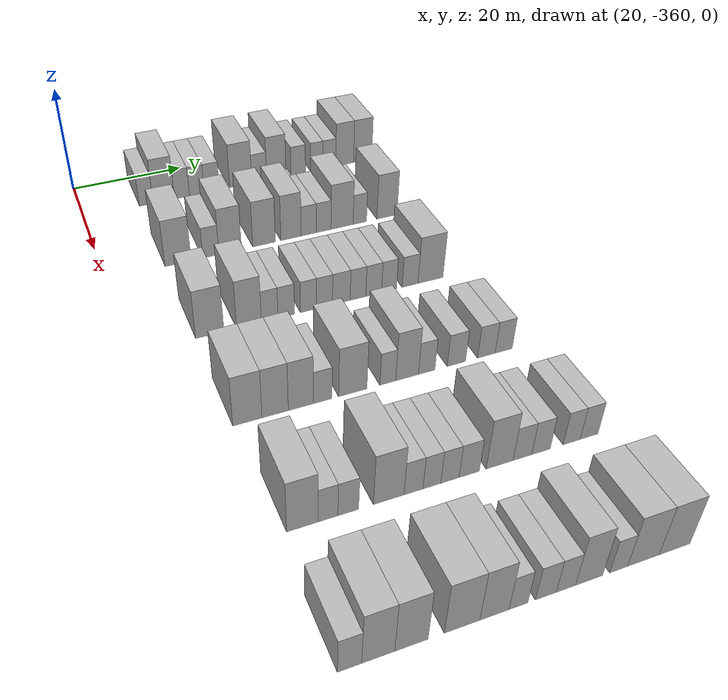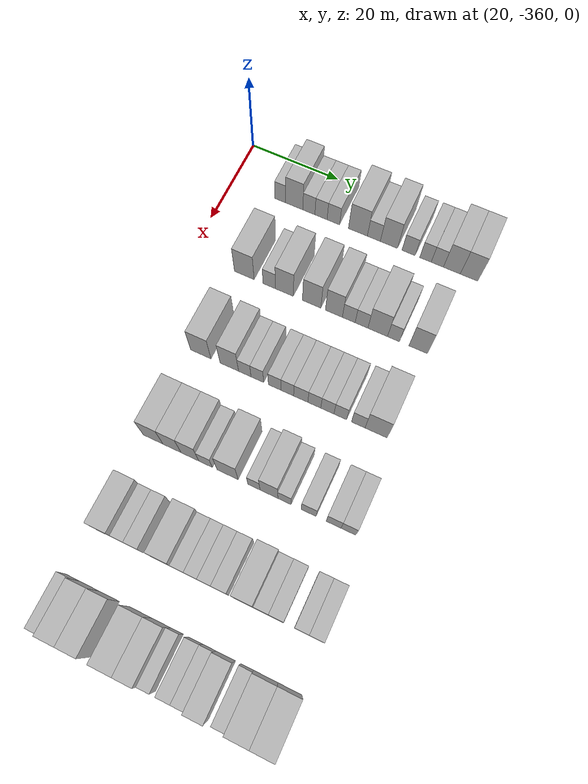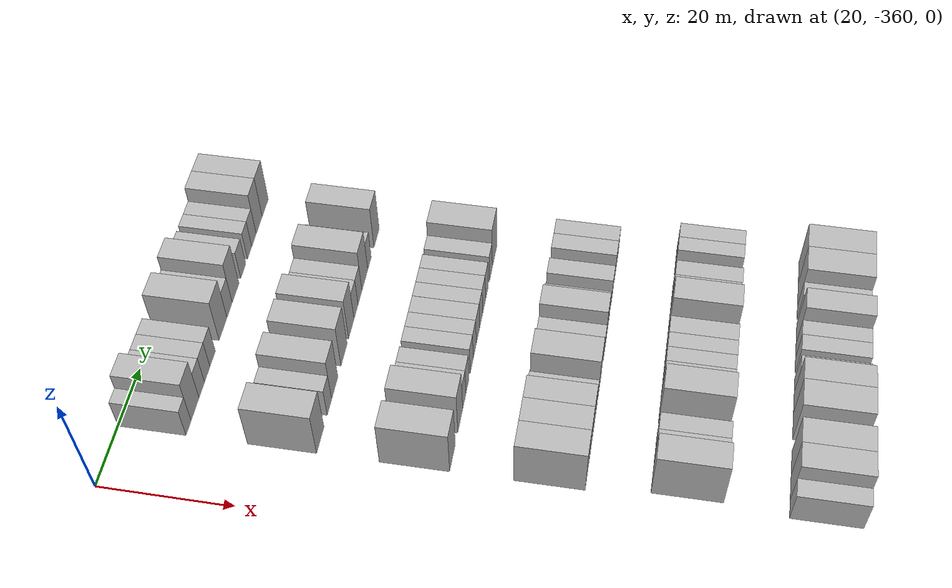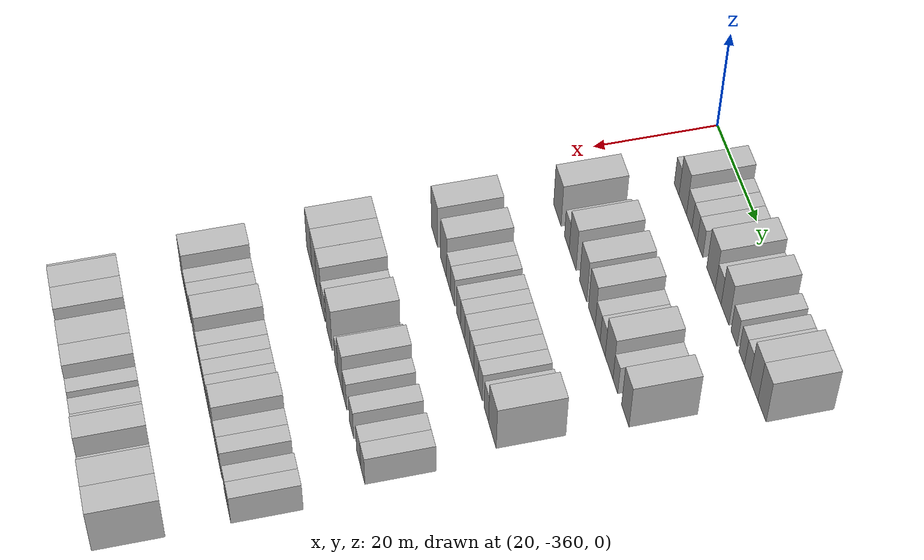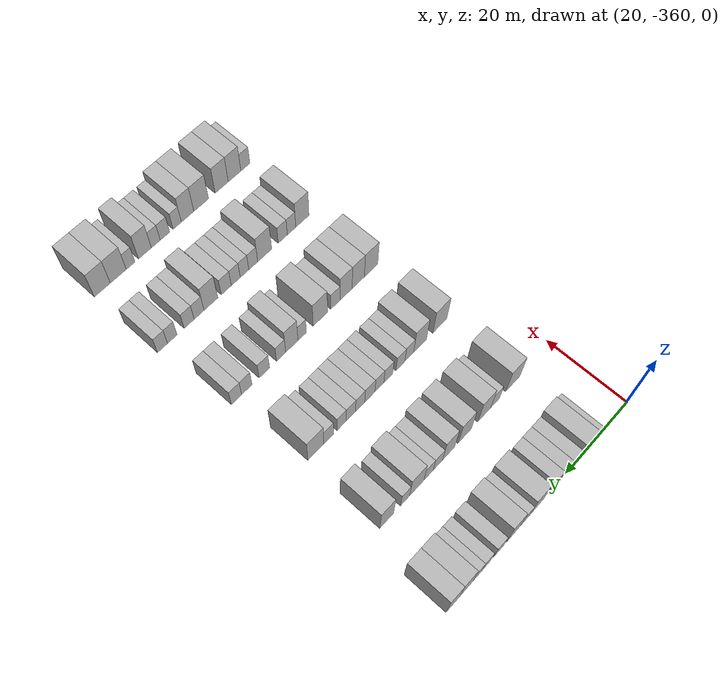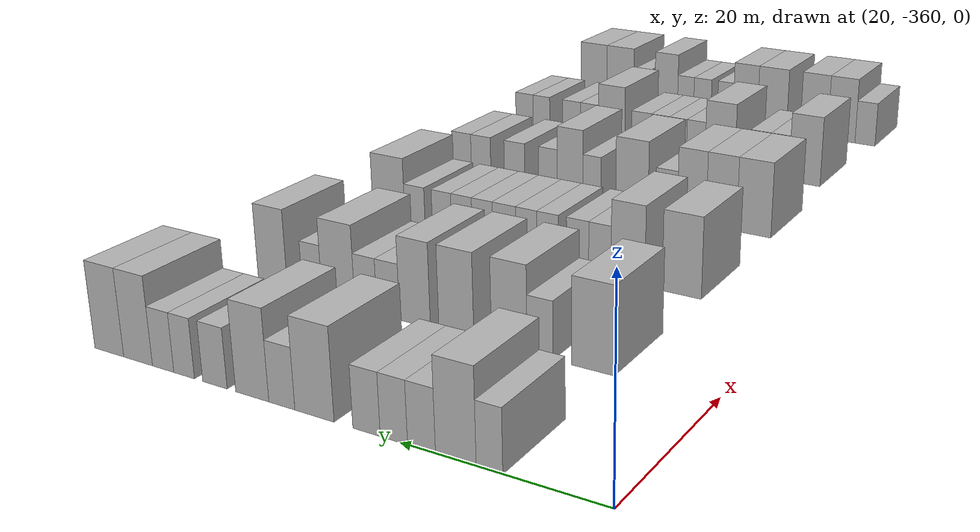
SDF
<sdf version="1.6">
 <world name="default">
  <model name="building_1">
   <static>1</static>
   <pose>25.0000 -348.7434 0 0.000000 0.000000 0.000000</pose>
   <link name="link">
    <pose>0 0 3.00 0 0 0</pose>
    <collision name="collision"><geometry><box><size>10.0000 2.5131 6.0000</size></box></geometry></collision>
    <visual name="visual">
     <cast_shadows>0</cast_shadows>
     <geometry><box><size>10.0000 2.5131 6.0000</size></box></geometry>
     <material>
      <script>
       <uri>model://HANNAS_wall/materials/scripts</uri>
       <uri>model://HANNAS_wall/materials/textures</uri>
       <name>vrc/HANNAS_wall</name>
      </script>
     </material>
    </visual>
   </link>
  </model>
  <model name="building_2">
   <static>1</static>
   <pose>25.0000 -345.5113 0 0.000000 0.000000 0.000000</pose>
   <link name="link">
    <pose>0 0 4.50 0 0 0</pose>
    <collision name="collision"><geometry><box><size>10.0000 3.9512 9.0000</size></box></geometry></collision>
    <visual name="visual">
     <cast_shadows>0</cast_shadows>
     <geometry><box><size>10.0000 3.9512 9.0000</size></box></geometry>
     <material>
      <script>
       <uri>model://HANNAS_wall/materials/scripts</uri>
       <uri>model://HANNAS_wall/materials/textures</uri>
       <name>vrc/HANNAS_wall</name>
      </script>
     </material>
    </visual>
   </link>
  </model>
  <model name="building_3">
   <static>1</static>
   <pose>25.0000 -342.1429 0 0.000000 0.000000 0.000000</pose>
   <link name="link">
    <pose>0 0 3.00 0 0 0</pose>
    <collision name="collision"><geometry><box><size>10.0000 2.7857 6.0000</size></box></geometry></collision>
    <visual name="visual">
     <cast_shadows>0</cast_shadows>
     <geometry><box><size>10.0000 2.7857 6.0000</size></box></geometry>
     <material>
      <script>
       <uri>model://HANNAS_wall/materials/scripts</uri>
       <uri>model://HANNAS_wall/materials/textures</uri>
       <name>vrc/HANNAS_wall</name>
      </script>
     </material>
    </visual>
   </link>
  </model>
  <model name="building_4">
   <static>1</static>
   <pose>25.0000 -339.3553 0 0.000000 0.000000 0.000000</pose>
   <link name="link">
    <pose>0 0 3.00 0 0 0</pose>
    <collision name="collision"><geometry><box><size>10.0000 2.7894 6.0000</size></box></geometry></collision>
    <visual name="visual">
     <cast_shadows>0</cast_shadows>
     <geometry><box><size>10.0000 2.7894 6.0000</size></box></geometry>
     <material>
      <script>
       <uri>model://HANNAS_wall/materials/scripts</uri>
       <uri>model://HANNAS_wall/materials/textures</uri>
       <name>vrc/HANNAS_wall</name>
      </script>
     </material>
    </visual>
   </link>
  </model>
  <model name="building_5">
   <static>1</static>
   <pose>25.0000 -336.5316 0 0.000000 0.000000 0.000000</pose>
   <link name="link">
    <pose>0 0 3.00 0 0 0</pose>
    <collision name="collision"><geometry><box><size>10.0000 2.8580 6.0000</size></box></geometry></collision>
    <visual name="visual">
     <cast_shadows>0</cast_shadows>
     <geometry><box><size>10.0000 2.8580 6.0000</size></box></geometry>
     <material>
      <script>
       <uri>model://HANNAS_wall/materials/scripts</uri>
       <uri>model://HANNAS_wall/materials/textures</uri>
       <name>vrc/HANNAS_wall</name>
      </script>
     </material>
    </visual>
   </link>
  </model>
  <model name="building_6">
   <static>1</static>
   <pose>25.0000 -330.9653 0 0.000000 0.000000 0.000000</pose>
   <link name="link">
    <pose>0 0 4.50 0 0 0</pose>
    <collision name="collision"><geometry><box><size>10.0000 4.2746 9.0000</size></box></geometry></collision>
    <visual name="visual">
     <cast_shadows>0</cast_shadows>
     <geometry><box><size>10.0000 4.2746 9.0000</size></box></geometry>
     <material>
      <script>
       <uri>model://HANNAS_wall/materials/scripts</uri>
       <uri>model://HANNAS_wall/materials/textures</uri>
       <name>vrc/HANNAS_wall</name>
      </script>
     </material>
    </visual>
   </link>
  </model>
  <model name="building_7">
   <static>1</static>
   <pose>25.0000 -327.3679 0 0.000000 0.000000 0.000000</pose>
   <link name="link">
    <pose>0 0 3.00 0 0 0</pose>
    <collision name="collision"><geometry><box><size>10.0000 2.9201 6.0000</size></box></geometry></collision>
    <visual name="visual">
     <cast_shadows>0</cast_shadows>
     <geometry><box><size>10.0000 2.9201 6.0000</size></box></geometry>
     <material>
      <script>
       <uri>model://HANNAS_wall/materials/scripts</uri>
       <uri>model://HANNAS_wall/materials/textures</uri>
       <name>vrc/HANNAS_wall</name>
      </script>
     </material>
    </visual>
   </link>
  </model>
  <model name="building_8">
   <static>1</static>
   <pose>25.0000 -324.0019 0 0.000000 0.000000 0.000000</pose>
   <link name="link">
    <pose>0 0 4.50 0 0 0</pose>
    <collision name="collision"><geometry><box><size>10.0000 3.8118 9.0000</size></box></geometry></collision>
    <visual name="visual">
     <cast_shadows>0</cast_shadows>
     <geometry><box><size>10.0000 3.8118 9.0000</size></box></geometry>
     <material>
      <script>
       <uri>model://HANNAS_wall/materials/scripts</uri>
       <uri>model://HANNAS_wall/materials/textures</uri>
       <name>vrc/HANNAS_wall</name>
      </script>
     </material>
    </visual>
   </link>
  </model>
  <model name="building_9">
   <static>1</static>
   <pose>25.0000 -319.6422 0 0.000000 0.000000 0.000000</pose>
   <link name="link">
    <pose>0 0 3.00 0 0 0</pose>
    <collision name="collision"><geometry><box><size>10.0000 2.9077 6.0000</size></box></geometry></collision>
    <visual name="visual">
     <cast_shadows>0</cast_shadows>
     <geometry><box><size>10.0000 2.9077 6.0000</size></box></geometry>
     <material>
      <script>
       <uri>model://HANNAS_wall/materials/scripts</uri>
       <uri>model://HANNAS_wall/materials/textures</uri>
       <name>vrc/HANNAS_wall</name>
      </script>
     </material>
    </visual>
   </link>
  </model>
  <model name="building_10">
   <static>1</static>
   <pose>25.0000 -315.9285 0 0.000000 0.000000 0.000000</pose>
   <link name="link">
    <pose>0 0 3.00 0 0 0</pose>
    <collision name="collision"><geometry><box><size>10.0000 2.5196 6.0000</size></box></geometry></collision>
    <visual name="visual">
     <cast_shadows>0</cast_shadows>
     <geometry><box><size>10.0000 2.5196 6.0000</size></box></geometry>
     <material>
      <script>
       <uri>model://HANNAS_wall/materials/scripts</uri>
       <uri>model://HANNAS_wall/materials/textures</uri>
       <name>vrc/HANNAS_wall</name>
      </script>
     </material>
    </visual>
   </link>
  </model>
  <model name="building_11">
   <static>1</static>
   <pose>25.0000 -313.3374 0 0.000000 0.000000 0.000000</pose>
   <link name="link">
    <pose>0 0 3.00 0 0 0</pose>
    <collision name="collision"><geometry><box><size>10.0000 2.6625 6.0000</size></box></geometry></collision>
    <visual name="visual">
     <cast_shadows>0</cast_shadows>
     <geometry><box><size>10.0000 2.6625 6.0000</size></box></geometry>
     <material>
      <script>
       <uri>model://HANNAS_wall/materials/scripts</uri>
       <uri>model://HANNAS_wall/materials/textures</uri>
       <name>vrc/HANNAS_wall</name>
      </script>
     </material>
    </visual>
   </link>
  </model>
  <model name="building_12">
   <static>1</static>
   <pose>25.0000 -310.1707 0 0.000000 0.000000 0.000000</pose>
   <link name="link">
    <pose>0 0 4.50 0 0 0</pose>
    <collision name="collision"><geometry><box><size>10.0000 3.6710 9.0000</size></box></geometry></collision>
    <visual name="visual">
     <cast_shadows>0</cast_shadows>
     <geometry><box><size>10.0000 3.6710 9.0000</size></box></geometry>
     <material>
      <script>
       <uri>model://HANNAS_wall/materials/scripts</uri>
       <uri>model://HANNAS_wall/materials/textures</uri>
       <name>vrc/HANNAS_wall</name>
      </script>
     </material>
    </visual>
   </link>
  </model>
  <model name="building_13">
   <static>1</static>
   <pose>25.0000 -306.4545 0 0.000000 0.000000 0.000000</pose>
   <link name="link">
    <pose>0 0 4.50 0 0 0</pose>
    <collision name="collision"><geometry><box><size>10.0000 3.7612 9.0000</size></box></geometry></collision>
    <visual name="visual">
     <cast_shadows>0</cast_shadows>
     <geometry><box><size>10.0000 3.7612 9.0000</size></box></geometry>
     <material>
      <script>
       <uri>model://HANNAS_wall/materials/scripts</uri>
       <uri>model://HANNAS_wall/materials/textures</uri>
       <name>vrc/HANNAS_wall</name>
      </script>
     </material>
    </visual>
   </link>
  </model>
  <model name="building_179">
   <static>1</static>
   <pose>44.0000 -347.7752 0 0.000000 0.000000 0.000000</pose>
   <link name="link">
    <pose>0 0 4.50 0 0 0</pose>
    <collision name="collision"><geometry><box><size>10.0000 4.4496 9.0000</size></box></geometry></collision>
    <visual name="visual">
     <cast_shadows>0</cast_shadows>
     <geometry><box><size>10.0000 4.4496 9.0000</size></box></geometry>
     <material>
      <script>
       <uri>model://HANNAS_wall/materials/scripts</uri>
       <uri>model://HANNAS_wall/materials/textures</uri>
       <name>vrc/HANNAS_wall</name>
      </script>
     </material>
    </visual>
   </link>
  </model>
  <model name="building_180">
   <static>1</static>
   <pose>44.0000 -342.1555 0 0.000000 0.000000 0.000000</pose>
   <link name="link">
    <pose>0 0 3.00 0 0 0</pose>
    <collision name="collision"><geometry><box><size>10.0000 2.7898 6.0000</size></box></geometry></collision>
    <visual name="visual">
     <cast_shadows>0</cast_shadows>
     <geometry><box><size>10.0000 2.7898 6.0000</size></box></geometry>
     <material>
      <script>
       <uri>model://HANNAS_wall/materials/scripts</uri>
       <uri>model://HANNAS_wall/materials/textures</uri>
       <name>vrc/HANNAS_wall</name>
      </script>
     </material>
    </visual>
   </link>
  </model>
  <model name="building_181">
   <static>1</static>
   <pose>44.0000 -338.7821 0 0.000000 0.000000 0.000000</pose>
   <link name="link">
    <pose>0 0 4.50 0 0 0</pose>
    <collision name="collision"><geometry><box><size>10.0000 3.9571 9.0000</size></box></geometry></collision>
    <visual name="visual">
     <cast_shadows>0</cast_shadows>
     <geometry><box><size>10.0000 3.9571 9.0000</size></box></geometry>
     <material>
      <script>
       <uri>model://HANNAS_wall/materials/scripts</uri>
       <uri>model://HANNAS_wall/materials/textures</uri>
       <name>vrc/HANNAS_wall</name>
      </script>
     </material>
    </visual>
   </link>
  </model>
  <model name="building_182">
   <static>1</static>
   <pose>44.0000 -332.7817 0 0.000000 0.000000 0.000000</pose>
   <link name="link">
    <pose>0 0 4.50 0 0 0</pose>
    <collision name="collision"><geometry><box><size>10.0000 4.0436 9.0000</size></box></geometry></collision>
    <visual name="visual">
     <cast_shadows>0</cast_shadows>
     <geometry><box><size>10.0000 4.0436 9.0000</size></box></geometry>
     <material>
      <script>
       <uri>model://HANNAS_wall/materials/scripts</uri>
       <uri>model://HANNAS_wall/materials/textures</uri>
       <name>vrc/HANNAS_wall</name>
      </script>
     </material>
    </visual>
   </link>
  </model>
  <model name="building_183">
   <static>1</static>
   <pose>44.0000 -327.9204 0 0.000000 0.000000 0.000000</pose>
   <link name="link">
    <pose>0 0 4.50 0 0 0</pose>
    <collision name="collision"><geometry><box><size>10.0000 3.6791 9.0000</size></box></geometry></collision>
    <visual name="visual">
     <cast_shadows>0</cast_shadows>
     <geometry><box><size>10.0000 3.6791 9.0000</size></box></geometry>
     <material>
      <script>
       <uri>model://HANNAS_wall/materials/scripts</uri>
       <uri>model://HANNAS_wall/materials/textures</uri>
       <name>vrc/HANNAS_wall</name>
      </script>
     </material>
    </visual>
   </link>
  </model>
  <model name="building_184">
   <static>1</static>
   <pose>44.0000 -324.6933 0 0.000000 0.000000 0.000000</pose>
   <link name="link">
    <pose>0 0 3.00 0 0 0</pose>
    <collision name="collision"><geometry><box><size>10.0000 2.7751 6.0000</size></box></geometry></collision>
    <visual name="visual">
     <cast_shadows>0</cast_shadows>
     <geometry><box><size>10.0000 2.7751 6.0000</size></box></geometry>
     <material>
      <script>
       <uri>model://HANNAS_wall/materials/scripts</uri>
       <uri>model://HANNAS_wall/materials/textures</uri>
       <name>vrc/HANNAS_wall</name>
      </script>
     </material>
    </visual>
   </link>
  </model>
  <model name="building_185">
   <static>1</static>
   <pose>44.0000 -321.9345 0 0.000000 0.000000 0.000000</pose>
   <link name="link">
    <pose>0 0 3.00 0 0 0</pose>
    <collision name="collision"><geometry><box><size>10.0000 2.7427 6.0000</size></box></geometry></collision>
    <visual name="visual">
     <cast_shadows>0</cast_shadows>
     <geometry><box><size>10.0000 2.7427 6.0000</size></box></geometry>
     <material>
      <script>
       <uri>model://HANNAS_wall/materials/scripts</uri>
       <uri>model://HANNAS_wall/materials/textures</uri>
       <name>vrc/HANNAS_wall</name>
      </script>
     </material>
    </visual>
   </link>
  </model>
  <model name="building_186">
   <static>1</static>
   <pose>44.0000 -318.4711 0 0.000000 0.000000 0.000000</pose>
   <link name="link">
    <pose>0 0 4.50 0 0 0</pose>
    <collision name="collision"><geometry><box><size>10.0000 4.1840 9.0000</size></box></geometry></collision>
    <visual name="visual">
     <cast_shadows>0</cast_shadows>
     <geometry><box><size>10.0000 4.1840 9.0000</size></box></geometry>
     <material>
      <script>
       <uri>model://HANNAS_wall/materials/scripts</uri>
       <uri>model://HANNAS_wall/materials/textures</uri>
       <name>vrc/HANNAS_wall</name>
      </script>
     </material>
    </visual>
   </link>
  </model>
  <model name="building_187">
   <static>1</static>
   <pose>44.0000 -315.1116 0 0.000000 0.000000 0.000000</pose>
   <link name="link">
    <pose>0 0 3.00 0 0 0</pose>
    <collision name="collision"><geometry><box><size>10.0000 2.5350 6.0000</size></box></geometry></collision>
    <visual name="visual">
     <cast_shadows>0</cast_shadows>
     <geometry><box><size>10.0000 2.5350 6.0000</size></box></geometry>
     <material>
      <script>
       <uri>model://HANNAS_wall/materials/scripts</uri>
       <uri>model://HANNAS_wall/materials/textures</uri>
       <name>vrc/HANNAS_wall</name>
      </script>
     </material>
    </visual>
   </link>
  </model>
  <model name="building_188">
   <static>1</static>
   <pose>44.0000 -309.9003 0 0.000000 0.000000 0.000000</pose>
   <link name="link">
    <pose>0 0 4.50 0 0 0</pose>
    <collision name="collision"><geometry><box><size>10.0000 3.8876 9.0000</size></box></geometry></collision>
    <visual name="visual">
     <cast_shadows>0</cast_shadows>
     <geometry><box><size>10.0000 3.8876 9.0000</size></box></geometry>
     <material>
      <script>
       <uri>model://HANNAS_wall/materials/scripts</uri>
       <uri>model://HANNAS_wall/materials/textures</uri>
       <name>vrc/HANNAS_wall</name>
      </script>
     </material>
    </visual>
   </link>
  </model>
  <model name="building_355">
   <static>1</static>
   <pose>63.0000 -347.7833 0 0.000000 0.000000 0.000000</pose>
   <link name="link">
    <pose>0 0 4.50 0 0 0</pose>
    <collision name="collision"><geometry><box><size>10.0000 4.4335 9.0000</size></box></geometry></collision>
    <visual name="visual">
     <cast_shadows>0</cast_shadows>
     <geometry><box><size>10.0000 4.4335 9.0000</size></box></geometry>
     <material>
      <script>
       <uri>model://HANNAS_wall/materials/scripts</uri>
       <uri>model://HANNAS_wall/materials/textures</uri>
       <name>vrc/HANNAS_wall</name>
      </script>
     </material>
    </visual>
   </link>
  </model>
  <model name="building_356">
   <static>1</static>
   <pose>63.0000 -341.5716 0 0.000000 0.000000 0.000000</pose>
   <link name="link">
    <pose>0 0 4.50 0 0 0</pose>
    <collision name="collision"><geometry><box><size>10.0000 3.9898 9.0000</size></box></geometry></collision>
    <visual name="visual">
     <cast_shadows>0</cast_shadows>
     <geometry><box><size>10.0000 3.9898 9.0000</size></box></geometry>
     <material>
      <script>
       <uri>model://HANNAS_wall/materials/scripts</uri>
       <uri>model://HANNAS_wall/materials/textures</uri>
       <name>vrc/HANNAS_wall</name>
      </script>
     </material>
    </visual>
   </link>
  </model>
  <model name="building_357">
   <static>1</static>
   <pose>63.0000 -338.2315 0 0.000000 0.000000 0.000000</pose>
   <link name="link">
    <pose>0 0 3.00 0 0 0</pose>
    <collision name="collision"><geometry><box><size>10.0000 2.6904 6.0000</size></box></geometry></collision>
    <visual name="visual">
     <cast_shadows>0</cast_shadows>
     <geometry><box><size>10.0000 2.6904 6.0000</size></box></geometry>
     <material>
      <script>
       <uri>model://HANNAS_wall/materials/scripts</uri>
       <uri>model://HANNAS_wall/materials/textures</uri>
       <name>vrc/HANNAS_wall</name>
      </script>
     </material>
    </visual>
   </link>
  </model>
  <model name="building_358">
   <static>1</static>
   <pose>63.0000 -335.5370 0 0.000000 0.000000 0.000000</pose>
   <link name="link">
    <pose>0 0 3.00 0 0 0</pose>
    <collision name="collision"><geometry><box><size>10.0000 2.6987 6.0000</size></box></geometry></collision>
    <visual name="visual">
     <cast_shadows>0</cast_shadows>
     <geometry><box><size>10.0000 2.6987 6.0000</size></box></geometry>
     <material>
      <script>
       <uri>model://HANNAS_wall/materials/scripts</uri>
       <uri>model://HANNAS_wall/materials/textures</uri>
       <name>vrc/HANNAS_wall</name>
      </script>
     </material>
    </visual>
   </link>
  </model>
  <model name="building_359">
   <static>1</static>
   <pose>63.0000 -331.8496 0 0.000000 0.000000 0.000000</pose>
   <link name="link">
    <pose>0 0 3.00 0 0 0</pose>
    <collision name="collision"><geometry><box><size>10.0000 2.6762 6.0000</size></box></geometry></collision>
    <visual name="visual">
     <cast_shadows>0</cast_shadows>
     <geometry><box><size>10.0000 2.6762 6.0000</size></box></geometry>
     <material>
      <script>
       <uri>model://HANNAS_wall/materials/scripts</uri>
       <uri>model://HANNAS_wall/materials/textures</uri>
       <name>vrc/HANNAS_wall</name>
      </script>
     </material>
    </visual>
   </link>
  </model>
  <model name="building_360">
   <static>1</static>
   <pose>63.0000 -329.1742 0 0.000000 0.000000 0.000000</pose>
   <link name="link">
    <pose>0 0 3.00 0 0 0</pose>
    <collision name="collision"><geometry><box><size>10.0000 2.6745 6.0000</size></box></geometry></collision>
    <visual name="visual">
     <cast_shadows>0</cast_shadows>
     <geometry><box><size>10.0000 2.6745 6.0000</size></box></geometry>
     <material>
      <script>
       <uri>model://HANNAS_wall/materials/scripts</uri>
       <uri>model://HANNAS_wall/materials/textures</uri>
       <name>vrc/HANNAS_wall</name>
      </script>
     </material>
    </visual>
   </link>
  </model>
  <model name="building_361">
   <static>1</static>
   <pose>63.0000 -326.3394 0 0.000000 0.000000 0.000000</pose>
   <link name="link">
    <pose>0 0 3.00 0 0 0</pose>
    <collision name="collision"><geometry><box><size>10.0000 2.9951 6.0000</size></box></geometry></collision>
    <visual name="visual">
     <cast_shadows>0</cast_shadows>
     <geometry><box><size>10.0000 2.9951 6.0000</size></box></geometry>
     <material>
      <script>
       <uri>model://HANNAS_wall/materials/scripts</uri>
       <uri>model://HANNAS_wall/materials/textures</uri>
       <name>vrc/HANNAS_wall</name>
      </script>
     </material>
    </visual>
   </link>
  </model>
  <model name="building_362">
   <static>1</static>
   <pose>63.0000 -323.4965 0 0.000000 0.000000 0.000000</pose>
   <link name="link">
    <pose>0 0 3.00 0 0 0</pose>
    <collision name="collision"><geometry><box><size>10.0000 2.6906 6.0000</size></box></geometry></collision>
    <visual name="visual">
     <cast_shadows>0</cast_shadows>
     <geometry><box><size>10.0000 2.6906 6.0000</size></box></geometry>
     <material>
      <script>
       <uri>model://HANNAS_wall/materials/scripts</uri>
       <uri>model://HANNAS_wall/materials/textures</uri>
       <name>vrc/HANNAS_wall</name>
      </script>
     </material>
    </visual>
   </link>
  </model>
  <model name="building_363">
   <static>1</static>
   <pose>63.0000 -320.7846 0 0.000000 0.000000 0.000000</pose>
   <link name="link">
    <pose>0 0 3.00 0 0 0</pose>
    <collision name="collision"><geometry><box><size>10.0000 2.7332 6.0000</size></box></geometry></collision>
    <visual name="visual">
     <cast_shadows>0</cast_shadows>
     <geometry><box><size>10.0000 2.7332 6.0000</size></box></geometry>
     <material>
      <script>
       <uri>model://HANNAS_wall/materials/scripts</uri>
       <uri>model://HANNAS_wall/materials/textures</uri>
       <name>vrc/HANNAS_wall</name>
      </script>
     </material>
    </visual>
   </link>
  </model>
  <model name="building_364">
   <static>1</static>
   <pose>63.0000 -318.1114 0 0.000000 0.000000 0.000000</pose>
   <link name="link">
    <pose>0 0 3.00 0 0 0</pose>
    <collision name="collision"><geometry><box><size>10.0000 2.6133 6.0000</size></box></geometry></collision>
    <visual name="visual">
     <cast_shadows>0</cast_shadows>
     <geometry><box><size>10.0000 2.6133 6.0000</size></box></geometry>
     <material>
      <script>
       <uri>model://HANNAS_wall/materials/scripts</uri>
       <uri>model://HANNAS_wall/materials/textures</uri>
       <name>vrc/HANNAS_wall</name>
      </script>
     </material>
    </visual>
   </link>
  </model>
  <model name="building_365">
   <static>1</static>
   <pose>63.0000 -314.4078 0 0.000000 0.000000 0.000000</pose>
   <link name="link">
    <pose>0 0 3.00 0 0 0</pose>
    <collision name="collision"><geometry><box><size>10.0000 2.7940 6.0000</size></box></geometry></collision>
    <visual name="visual">
     <cast_shadows>0</cast_shadows>
     <geometry><box><size>10.0000 2.7940 6.0000</size></box></geometry>
     <material>
      <script>
       <uri>model://HANNAS_wall/materials/scripts</uri>
       <uri>model://HANNAS_wall/materials/textures</uri>
       <name>vrc/HANNAS_wall</name>
      </script>
     </material>
    </visual>
   </link>
  </model>
  <model name="building_366">
   <static>1</static>
   <pose>63.0000 -310.7621 0 0.000000 0.000000 0.000000</pose>
   <link name="link">
    <pose>0 0 4.50 0 0 0</pose>
    <collision name="collision"><geometry><box><size>10.0000 4.4974 9.0000</size></box></geometry></collision>
    <visual name="visual">
     <cast_shadows>0</cast_shadows>
     <geometry><box><size>10.0000 4.4974 9.0000</size></box></geometry>
     <material>
      <script>
       <uri>model://HANNAS_wall/materials/scripts</uri>
       <uri>model://HANNAS_wall/materials/textures</uri>
       <name>vrc/HANNAS_wall</name>
      </script>
     </material>
    </visual>
   </link>
  </model>
  <model name="building_543">
   <static>1</static>
   <pose>82.0000 -347.9026 0 0.000000 0.000000 0.000000</pose>
   <link name="link">
    <pose>0 0 4.50 0 0 0</pose>
    <collision name="collision"><geometry><box><size>10.0000 4.1948 9.0000</size></box></geometry></collision>
    <visual name="visual">
     <cast_shadows>0</cast_shadows>
     <geometry><box><size>10.0000 4.1948 9.0000</size></box></geometry>
     <material>
      <script>
       <uri>model://HANNAS_wall/materials/scripts</uri>
       <uri>model://HANNAS_wall/materials/textures</uri>
       <name>vrc/HANNAS_wall</name>
      </script>
     </material>
    </visual>
   </link>
  </model>
  <model name="building_544">
   <static>1</static>
   <pose>82.0000 -343.8933 0 0.000000 0.000000 0.000000</pose>
   <link name="link">
    <pose>0 0 4.50 0 0 0</pose>
    <collision name="collision"><geometry><box><size>10.0000 3.8237 9.0000</size></box></geometry></collision>
    <visual name="visual">
     <cast_shadows>0</cast_shadows>
     <geometry><box><size>10.0000 3.8237 9.0000</size></box></geometry>
     <material>
      <script>
       <uri>model://HANNAS_wall/materials/scripts</uri>
       <uri>model://HANNAS_wall/materials/textures</uri>
       <name>vrc/HANNAS_wall</name>
      </script>
     </material>
    </visual>
   </link>
  </model>
  <model name="building_545">
   <static>1</static>
   <pose>82.0000 -340.1380 0 0.000000 0.000000 0.000000</pose>
   <link name="link">
    <pose>0 0 4.50 0 0 0</pose>
    <collision name="collision"><geometry><box><size>10.0000 3.6868 9.0000</size></box></geometry></collision>
    <visual name="visual">
     <cast_shadows>0</cast_shadows>
     <geometry><box><size>10.0000 3.6868 9.0000</size></box></geometry>
     <material>
      <script>
       <uri>model://HANNAS_wall/materials/scripts</uri>
       <uri>model://HANNAS_wall/materials/textures</uri>
       <name>vrc/HANNAS_wall</name>
      </script>
     </material>
    </visual>
   </link>
  </model>
  <model name="building_546">
   <static>1</static>
   <pose>82.0000 -336.8906 0 0.000000 0.000000 0.000000</pose>
   <link name="link">
    <pose>0 0 3.00 0 0 0</pose>
    <collision name="collision"><geometry><box><size>10.0000 2.8079 6.0000</size></box></geometry></collision>
    <visual name="visual">
     <cast_shadows>0</cast_shadows>
     <geometry><box><size>10.0000 2.8079 6.0000</size></box></geometry>
     <material>
      <script>
       <uri>model://HANNAS_wall/materials/scripts</uri>
       <uri>model://HANNAS_wall/materials/textures</uri>
       <name>vrc/HANNAS_wall</name>
      </script>
     </material>
    </visual>
   </link>
  </model>
  <model name="building_547">
   <static>1</static>
   <pose>82.0000 -332.3211 0 0.000000 0.000000 0.000000</pose>
   <link name="link">
    <pose>0 0 4.50 0 0 0</pose>
    <collision name="collision"><geometry><box><size>10.0000 4.3312 9.0000</size></box></geometry></collision>
    <visual name="visual">
     <cast_shadows>0</cast_shadows>
     <geometry><box><size>10.0000 4.3312 9.0000</size></box></geometry>
     <material>
      <script>
       <uri>model://HANNAS_wall/materials/scripts</uri>
       <uri>model://HANNAS_wall/materials/textures</uri>
       <name>vrc/HANNAS_wall</name>
      </script>
     </material>
    </visual>
   </link>
  </model>
  <model name="building_548">
   <static>1</static>
   <pose>82.0000 -326.9207 0 0.000000 0.000000 0.000000</pose>
   <link name="link">
    <pose>0 0 3.00 0 0 0</pose>
    <collision name="collision"><geometry><box><size>10.0000 2.4695 6.0000</size></box></geometry></collision>
    <visual name="visual">
     <cast_shadows>0</cast_shadows>
     <geometry><box><size>10.0000 2.4695 6.0000</size></box></geometry>
     <material>
      <script>
       <uri>model://HANNAS_wall/materials/scripts</uri>
       <uri>model://HANNAS_wall/materials/textures</uri>
       <name>vrc/HANNAS_wall</name>
      </script>
     </material>
    </visual>
   </link>
  </model>
  <model name="building_549">
   <static>1</static>
   <pose>82.0000 -323.8823 0 0.000000 0.000000 0.000000</pose>
   <link name="link">
    <pose>0 0 4.50 0 0 0</pose>
    <collision name="collision"><geometry><box><size>10.0000 3.6072 9.0000</size></box></geometry></collision>
    <visual name="visual">
     <cast_shadows>0</cast_shadows>
     <geometry><box><size>10.0000 3.6072 9.0000</size></box></geometry>
     <material>
      <script>
       <uri>model://HANNAS_wall/materials/scripts</uri>
       <uri>model://HANNAS_wall/materials/textures</uri>
       <name>vrc/HANNAS_wall</name>
      </script>
     </material>
    </visual>
   </link>
  </model>
  <model name="building_550">
   <static>1</static>
   <pose>82.0000 -320.7619 0 0.000000 0.000000 0.000000</pose>
   <link name="link">
    <pose>0 0 3.00 0 0 0</pose>
    <collision name="collision"><geometry><box><size>10.0000 2.6337 6.0000</size></box></geometry></collision>
    <visual name="visual">
     <cast_shadows>0</cast_shadows>
     <geometry><box><size>10.0000 2.6337 6.0000</size></box></geometry>
     <material>
      <script>
       <uri>model://HANNAS_wall/materials/scripts</uri>
       <uri>model://HANNAS_wall/materials/textures</uri>
       <name>vrc/HANNAS_wall</name>
      </script>
     </material>
    </visual>
   </link>
  </model>
  <model name="building_551">
   <static>1</static>
   <pose>82.0000 -315.9513 0 0.000000 0.000000 0.000000</pose>
   <link name="link">
    <pose>0 0 3.00 0 0 0</pose>
    <collision name="collision"><geometry><box><size>10.0000 2.9876 6.0000</size></box></geometry></collision>
    <visual name="visual">
     <cast_shadows>0</cast_shadows>
     <geometry><box><size>10.0000 2.9876 6.0000</size></box></geometry>
     <material>
      <script>
       <uri>model://HANNAS_wall/materials/scripts</uri>
       <uri>model://HANNAS_wall/materials/textures</uri>
       <name>vrc/HANNAS_wall</name>
      </script>
     </material>
    </visual>
   </link>
  </model>
  <model name="building_552">
   <static>1</static>
   <pose>82.0000 -310.9967 0 0.000000 0.000000 0.000000</pose>
   <link name="link">
    <pose>0 0 3.00 0 0 0</pose>
    <collision name="collision"><geometry><box><size>10.0000 2.9216 6.0000</size></box></geometry></collision>
    <visual name="visual">
     <cast_shadows>0</cast_shadows>
     <geometry><box><size>10.0000 2.9216 6.0000</size></box></geometry>
     <material>
      <script>
       <uri>model://HANNAS_wall/materials/scripts</uri>
       <uri>model://HANNAS_wall/materials/textures</uri>
       <name>vrc/HANNAS_wall</name>
      </script>
     </material>
    </visual>
   </link>
  </model>
  <model name="building_553">
   <static>1</static>
   <pose>82.0000 -308.0996 0 0.000000 0.000000 0.000000</pose>
   <link name="link">
    <pose>0 0 3.00 0 0 0</pose>
    <collision name="collision"><geometry><box><size>10.0000 2.8726 6.0000</size></box></geometry></collision>
    <visual name="visual">
     <cast_shadows>0</cast_shadows>
     <geometry><box><size>10.0000 2.8726 6.0000</size></box></geometry>
     <material>
      <script>
       <uri>model://HANNAS_wall/materials/scripts</uri>
       <uri>model://HANNAS_wall/materials/textures</uri>
       <name>vrc/HANNAS_wall</name>
      </script>
     </material>
    </visual>
   </link>
  </model>
  <model name="building_725">
   <static>1</static>
   <pose>101.0000 -346.9299 0 0.000000 0.000000 0.000000</pose>
   <link name="link">
    <pose>0 0 4.50 0 0 0</pose>
    <collision name="collision"><geometry><box><size>10.0000 4.1402 9.0000</size></box></geometry></collision>
    <visual name="visual">
     <cast_shadows>0</cast_shadows>
     <geometry><box><size>10.0000 4.1402 9.0000</size></box></geometry>
     <material>
      <script>
       <uri>model://HANNAS_wall/materials/scripts</uri>
       <uri>model://HANNAS_wall/materials/textures</uri>
       <name>vrc/HANNAS_wall</name>
      </script>
     </material>
    </visual>
   </link>
  </model>
  <model name="building_726">
   <static>1</static>
   <pose>101.0000 -343.5600 0 0.000000 0.000000 0.000000</pose>
   <link name="link">
    <pose>0 0 3.00 0 0 0</pose>
    <collision name="collision"><geometry><box><size>10.0000 2.5997 6.0000</size></box></geometry></collision>
    <visual name="visual">
     <cast_shadows>0</cast_shadows>
     <geometry><box><size>10.0000 2.5997 6.0000</size></box></geometry>
     <material>
      <script>
       <uri>model://HANNAS_wall/materials/scripts</uri>
       <uri>model://HANNAS_wall/materials/textures</uri>
       <name>vrc/HANNAS_wall</name>
      </script>
     </material>
    </visual>
   </link>
  </model>
  <model name="building_727">
   <static>1</static>
   <pose>101.0000 -340.8721 0 0.000000 0.000000 0.000000</pose>
   <link name="link">
    <pose>0 0 3.00 0 0 0</pose>
    <collision name="collision"><geometry><box><size>10.0000 2.7760 6.0000</size></box></geometry></collision>
    <visual name="visual">
     <cast_shadows>0</cast_shadows>
     <geometry><box><size>10.0000 2.7760 6.0000</size></box></geometry>
     <material>
      <script>
       <uri>model://HANNAS_wall/materials/scripts</uri>
       <uri>model://HANNAS_wall/materials/textures</uri>
       <name>vrc/HANNAS_wall</name>
      </script>
     </material>
    </visual>
   </link>
  </model>
  <model name="building_728">
   <static>1</static>
   <pose>101.0000 -335.3734 0 0.000000 0.000000 0.000000</pose>
   <link name="link">
    <pose>0 0 4.50 0 0 0</pose>
    <collision name="collision"><geometry><box><size>10.0000 4.2213 9.0000</size></box></geometry></collision>
    <visual name="visual">
     <cast_shadows>0</cast_shadows>
     <geometry><box><size>10.0000 4.2213 9.0000</size></box></geometry>
     <material>
      <script>
       <uri>model://HANNAS_wall/materials/scripts</uri>
       <uri>model://HANNAS_wall/materials/textures</uri>
       <name>vrc/HANNAS_wall</name>
      </script>
     </material>
    </visual>
   </link>
  </model>
  <model name="building_729">
   <static>1</static>
   <pose>101.0000 -331.9342 0 0.000000 0.000000 0.000000</pose>
   <link name="link">
    <pose>0 0 3.00 0 0 0</pose>
    <collision name="collision"><geometry><box><size>10.0000 2.6572 6.0000</size></box></geometry></collision>
    <visual name="visual">
     <cast_shadows>0</cast_shadows>
     <geometry><box><size>10.0000 2.6572 6.0000</size></box></geometry>
     <material>
      <script>
       <uri>model://HANNAS_wall/materials/scripts</uri>
       <uri>model://HANNAS_wall/materials/textures</uri>
       <name>vrc/HANNAS_wall</name>
      </script>
     </material>
    </visual>
   </link>
  </model>
  <model name="building_730">
   <static>1</static>
   <pose>101.0000 -329.3419 0 0.000000 0.000000 0.000000</pose>
   <link name="link">
    <pose>0 0 3.00 0 0 0</pose>
    <collision name="collision"><geometry><box><size>10.0000 2.5275 6.0000</size></box></geometry></collision>
    <visual name="visual">
     <cast_shadows>0</cast_shadows>
     <geometry><box><size>10.0000 2.5275 6.0000</size></box></geometry>
     <material>
      <script>
       <uri>model://HANNAS_wall/materials/scripts</uri>
       <uri>model://HANNAS_wall/materials/textures</uri>
       <name>vrc/HANNAS_wall</name>
      </script>
     </material>
    </visual>
   </link>
  </model>
  <model name="building_731">
   <static>1</static>
   <pose>101.0000 -326.7708 0 0.000000 0.000000 0.000000</pose>
   <link name="link">
    <pose>0 0 3.00 0 0 0</pose>
    <collision name="collision"><geometry><box><size>10.0000 2.6146 6.0000</size></box></geometry></collision>
    <visual name="visual">
     <cast_shadows>0</cast_shadows>
     <geometry><box><size>10.0000 2.6146 6.0000</size></box></geometry>
     <material>
      <script>
       <uri>model://HANNAS_wall/materials/scripts</uri>
       <uri>model://HANNAS_wall/materials/textures</uri>
       <name>vrc/HANNAS_wall</name>
      </script>
     </material>
    </visual>
   </link>
  </model>
  <model name="building_732">
   <static>1</static>
   <pose>101.0000 -323.9912 0 0.000000 0.000000 0.000000</pose>
   <link name="link">
    <pose>0 0 3.00 0 0 0</pose>
    <collision name="collision"><geometry><box><size>10.0000 2.9447 6.0000</size></box></geometry></collision>
    <visual name="visual">
     <cast_shadows>0</cast_shadows>
     <geometry><box><size>10.0000 2.9447 6.0000</size></box></geometry>
     <material>
      <script>
       <uri>model://HANNAS_wall/materials/scripts</uri>
       <uri>model://HANNAS_wall/materials/textures</uri>
       <name>vrc/HANNAS_wall</name>
      </script>
     </material>
    </visual>
   </link>
  </model>
  <model name="building_733">
   <static>1</static>
   <pose>101.0000 -319.5283 0 0.000000 0.000000 0.000000</pose>
   <link name="link">
    <pose>0 0 4.50 0 0 0</pose>
    <collision name="collision"><geometry><box><size>10.0000 3.9812 9.0000</size></box></geometry></collision>
    <visual name="visual">
     <cast_shadows>0</cast_shadows>
     <geometry><box><size>10.0000 3.9812 9.0000</size></box></geometry>
     <material>
      <script>
       <uri>model://HANNAS_wall/materials/scripts</uri>
       <uri>model://HANNAS_wall/materials/textures</uri>
       <name>vrc/HANNAS_wall</name>
      </script>
     </material>
    </visual>
   </link>
  </model>
  <model name="building_734">
   <static>1</static>
   <pose>101.0000 -316.1287 0 0.000000 0.000000 0.000000</pose>
   <link name="link">
    <pose>0 0 3.00 0 0 0</pose>
    <collision name="collision"><geometry><box><size>10.0000 2.8181 6.0000</size></box></geometry></collision>
    <visual name="visual">
     <cast_shadows>0</cast_shadows>
     <geometry><box><size>10.0000 2.8181 6.0000</size></box></geometry>
     <material>
      <script>
       <uri>model://HANNAS_wall/materials/scripts</uri>
       <uri>model://HANNAS_wall/materials/textures</uri>
       <name>vrc/HANNAS_wall</name>
      </script>
     </material>
    </visual>
   </link>
  </model>
  <model name="building_735">
   <static>1</static>
   <pose>101.0000 -313.3141 0 0.000000 0.000000 0.000000</pose>
   <link name="link">
    <pose>0 0 3.00 0 0 0</pose>
    <collision name="collision"><geometry><box><size>10.0000 2.8111 6.0000</size></box></geometry></collision>
    <visual name="visual">
     <cast_shadows>0</cast_shadows>
     <geometry><box><size>10.0000 2.8111 6.0000</size></box></geometry>
     <material>
      <script>
       <uri>model://HANNAS_wall/materials/scripts</uri>
       <uri>model://HANNAS_wall/materials/textures</uri>
       <name>vrc/HANNAS_wall</name>
      </script>
     </material>
    </visual>
   </link>
  </model>
  <model name="building_736">
   <static>1</static>
   <pose>101.0000 -308.5784 0 0.000000 0.000000 0.000000</pose>
   <link name="link">
    <pose>0 0 3.00 0 0 0</pose>
    <collision name="collision"><geometry><box><size>10.0000 2.6603 6.0000</size></box></geometry></collision>
    <visual name="visual">
     <cast_shadows>0</cast_shadows>
     <geometry><box><size>10.0000 2.6603 6.0000</size></box></geometry>
     <material>
      <script>
       <uri>model://HANNAS_wall/materials/scripts</uri>
       <uri>model://HANNAS_wall/materials/textures</uri>
       <name>vrc/HANNAS_wall</name>
      </script>
     </material>
    </visual>
   </link>
  </model>
  <model name="building_737">
   <static>1</static>
   <pose>101.0000 -305.8612 0 0.000000 0.000000 0.000000</pose>
   <link name="link">
    <pose>0 0 3.00 0 0 0</pose>
    <collision name="collision"><geometry><box><size>10.0000 2.7742 6.0000</size></box></geometry></collision>
    <visual name="visual">
     <cast_shadows>0</cast_shadows>
     <geometry><box><size>10.0000 2.7742 6.0000</size></box></geometry>
     <material>
      <script>
       <uri>model://HANNAS_wall/materials/scripts</uri>
       <uri>model://HANNAS_wall/materials/textures</uri>
       <name>vrc/HANNAS_wall</name>
      </script>
     </material>
    </visual>
   </link>
  </model>
  <model name="building_890">
   <static>1</static>
   <pose>120.0000 -348.5898 0 0.000000 0.000000 0.000000</pose>
   <link name="link">
    <pose>0 0 3.00 0 0 0</pose>
    <collision name="collision"><geometry><box><size>10.0000 2.8205 6.0000</size></box></geometry></collision>
    <visual name="visual">
     <cast_shadows>0</cast_shadows>
     <geometry><box><size>10.0000 2.8205 6.0000</size></box></geometry>
     <material>
      <script>
       <uri>model://HANNAS_wall/materials/scripts</uri>
       <uri>model://HANNAS_wall/materials/textures</uri>
       <name>vrc/HANNAS_wall</name>
      </script>
     </material>
    </visual>
   </link>
  </model>
  <model name="building_891">
   <static>1</static>
   <pose>120.0000 -345.2182 0 0.000000 0.000000 0.000000</pose>
   <link name="link">
    <pose>0 0 4.50 0 0 0</pose>
    <collision name="collision"><geometry><box><size>10.0000 3.9226 9.0000</size></box></geometry></collision>
    <visual name="visual">
     <cast_shadows>0</cast_shadows>
     <geometry><box><size>10.0000 3.9226 9.0000</size></box></geometry>
     <material>
      <script>
       <uri>model://HANNAS_wall/materials/scripts</uri>
       <uri>model://HANNAS_wall/materials/textures</uri>
       <name>vrc/HANNAS_wall</name>
      </script>
     </material>
    </visual>
   </link>
  </model>
  <model name="building_892">
   <static>1</static>
   <pose>120.0000 -341.2468 0 0.000000 0.000000 0.000000</pose>
   <link name="link">
    <pose>0 0 4.50 0 0 0</pose>
    <collision name="collision"><geometry><box><size>10.0000 4.0202 9.0000</size></box></geometry></collision>
    <visual name="visual">
     <cast_shadows>0</cast_shadows>
     <geometry><box><size>10.0000 4.0202 9.0000</size></box></geometry>
     <material>
      <script>
       <uri>model://HANNAS_wall/materials/scripts</uri>
       <uri>model://HANNAS_wall/materials/textures</uri>
       <name>vrc/HANNAS_wall</name>
      </script>
     </material>
    </visual>
   </link>
  </model>
  <model name="building_893">
   <static>1</static>
   <pose>120.0000 -335.0196 0 0.000000 0.000000 0.000000</pose>
   <link name="link">
    <pose>0 0 4.50 0 0 0</pose>
    <collision name="collision"><geometry><box><size>10.0000 4.4342 9.0000</size></box></geometry></collision>
    <visual name="visual">
     <cast_shadows>0</cast_shadows>
     <geometry><box><size>10.0000 4.4342 9.0000</size></box></geometry>
     <material>
      <script>
       <uri>model://HANNAS_wall/materials/scripts</uri>
       <uri>model://HANNAS_wall/materials/textures</uri>
       <name>vrc/HANNAS_wall</name>
      </script>
     </material>
    </visual>
   </link>
  </model>
  <model name="building_894">
   <static>1</static>
   <pose>120.0000 -330.9422 0 0.000000 0.000000 0.000000</pose>
   <link name="link">
    <pose>0 0 4.50 0 0 0</pose>
    <collision name="collision"><geometry><box><size>10.0000 3.7205 9.0000</size></box></geometry></collision>
    <visual name="visual">
     <cast_shadows>0</cast_shadows>
     <geometry><box><size>10.0000 3.7205 9.0000</size></box></geometry>
     <material>
      <script>
       <uri>model://HANNAS_wall/materials/scripts</uri>
       <uri>model://HANNAS_wall/materials/textures</uri>
       <name>vrc/HANNAS_wall</name>
      </script>
     </material>
    </visual>
   </link>
  </model>
  <model name="building_895">
   <static>1</static>
   <pose>120.0000 -327.8658 0 0.000000 0.000000 0.000000</pose>
   <link name="link">
    <pose>0 0 3.00 0 0 0</pose>
    <collision name="collision"><geometry><box><size>10.0000 2.4324 6.0000</size></box></geometry></collision>
    <visual name="visual">
     <cast_shadows>0</cast_shadows>
     <geometry><box><size>10.0000 2.4324 6.0000</size></box></geometry>
     <material>
      <script>
       <uri>model://HANNAS_wall/materials/scripts</uri>
       <uri>model://HANNAS_wall/materials/textures</uri>
       <name>vrc/HANNAS_wall</name>
      </script>
     </material>
    </visual>
   </link>
  </model>
  <model name="building_896">
   <static>1</static>
   <pose>120.0000 -324.2773 0 0.000000 0.000000 0.000000</pose>
   <link name="link">
    <pose>0 0 3.00 0 0 0</pose>
    <collision name="collision"><geometry><box><size>10.0000 2.7446 6.0000</size></box></geometry></collision>
    <visual name="visual">
     <cast_shadows>0</cast_shadows>
     <geometry><box><size>10.0000 2.7446 6.0000</size></box></geometry>
     <material>
      <script>
       <uri>model://HANNAS_wall/materials/scripts</uri>
       <uri>model://HANNAS_wall/materials/textures</uri>
       <name>vrc/HANNAS_wall</name>
      </script>
     </material>
    </visual>
   </link>
  </model>
  <model name="building_897">
   <static>1</static>
   <pose>120.0000 -321.6164 0 0.000000 0.000000 0.000000</pose>
   <link name="link">
    <pose>0 0 3.00 0 0 0</pose>
    <collision name="collision"><geometry><box><size>10.0000 2.5771 6.0000</size></box></geometry></collision>
    <visual name="visual">
     <cast_shadows>0</cast_shadows>
     <geometry><box><size>10.0000 2.5771 6.0000</size></box></geometry>
     <material>
      <script>
       <uri>model://HANNAS_wall/materials/scripts</uri>
       <uri>model://HANNAS_wall/materials/textures</uri>
       <name>vrc/HANNAS_wall</name>
      </script>
     </material>
    </visual>
   </link>
  </model>
  <model name="building_898">
   <static>1</static>
   <pose>120.0000 -318.4877 0 0.000000 0.000000 0.000000</pose>
   <link name="link">
    <pose>0 0 4.50 0 0 0</pose>
    <collision name="collision"><geometry><box><size>10.0000 3.6804 9.0000</size></box></geometry></collision>
    <visual name="visual">
     <cast_shadows>0</cast_shadows>
     <geometry><box><size>10.0000 3.6804 9.0000</size></box></geometry>
     <material>
      <script>
       <uri>model://HANNAS_wall/materials/scripts</uri>
       <uri>model://HANNAS_wall/materials/textures</uri>
       <name>vrc/HANNAS_wall</name>
      </script>
     </material>
    </visual>
   </link>
  </model>
  <model name="building_899">
   <static>1</static>
   <pose>120.0000 -314.4090 0 0.000000 0.000000 0.000000</pose>
   <link name="link">
    <pose>0 0 3.00 0 0 0</pose>
    <collision name="collision"><geometry><box><size>10.0000 2.4770 6.0000</size></box></geometry></collision>
    <visual name="visual">
     <cast_shadows>0</cast_shadows>
     <geometry><box><size>10.0000 2.4770 6.0000</size></box></geometry>
     <material>
      <script>
       <uri>model://HANNAS_wall/materials/scripts</uri>
       <uri>model://HANNAS_wall/materials/textures</uri>
       <name>vrc/HANNAS_wall</name>
      </script>
     </material>
    </visual>
   </link>
  </model>
  <model name="building_900">
   <static>1</static>
   <pose>120.0000 -310.9359 0 0.000000 0.000000 0.000000</pose>
   <link name="link">
    <pose>0 0 4.50 0 0 0</pose>
    <collision name="collision"><geometry><box><size>10.0000 4.4693 9.0000</size></box></geometry></collision>
    <visual name="visual">
     <cast_shadows>0</cast_shadows>
     <geometry><box><size>10.0000 4.4693 9.0000</size></box></geometry>
     <material>
      <script>
       <uri>model://HANNAS_wall/materials/scripts</uri>
       <uri>model://HANNAS_wall/materials/textures</uri>
       <name>vrc/HANNAS_wall</name>
      </script>
     </material>
    </visual>
   </link>
  </model>
  <model name="building_901">
   <static>1</static>
   <pose>120.0000 -306.4881 0 0.000000 0.000000 0.000000</pose>
   <link name="link">
    <pose>0 0 4.50 0 0 0</pose>
    <collision name="collision"><geometry><box><size>10.0000 4.4263 9.0000</size></box></geometry></collision>
    <visual name="visual">
     <cast_shadows>0</cast_shadows>
     <geometry><box><size>10.0000 4.4263 9.0000</size></box></geometry>
     <material>
      <script>
       <uri>model://HANNAS_wall/materials/scripts</uri>
       <uri>model://HANNAS_wall/materials/textures</uri>
       <name>vrc/HANNAS_wall</name>
      </script>
     </material>
    </visual>
   </link>
  </model>
 </world>
</sdf>
